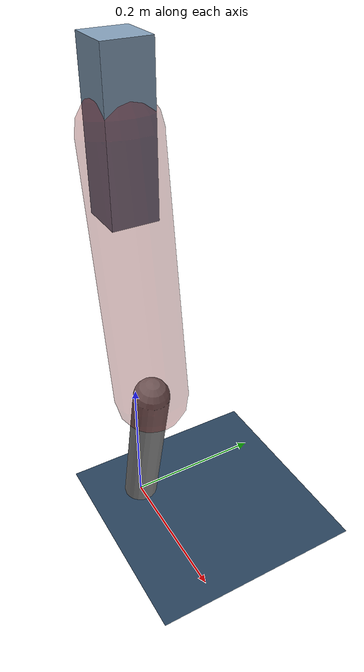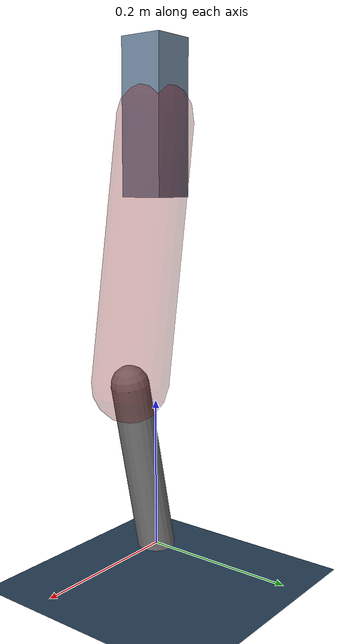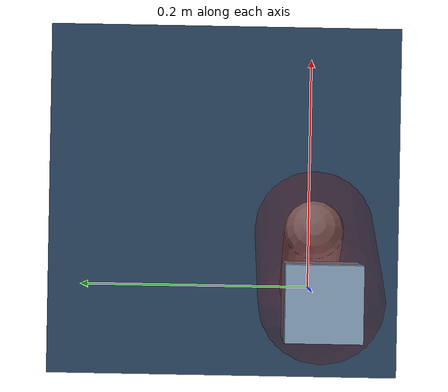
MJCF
<mujoco model="Hopper2D">
	<compiler inertiafromgeom="true" angle="radian" />
	<option timestep="0.001" integrator="implicit" cone="elliptic" solver="Newton" tolerance="1e-10" />

	<default>
		<geom contype="1" conaffinity="1" condim="3" friction="2 0.005 0.0001" solref="0.005 1" />
		<joint limited="true" damping="0.1" />
	</default>

	<asset>
		<texture name="skybox" type="skybox" builtin="gradient" rgb1=".4 .6 .8" rgb2="0 0 0" width="800" height="800" />
		<texture name="grid" type="2d" builtin="checker" rgb1=".1 .2 .3" rgb2=".2 .3 .4" width="300" height="300" mark="edge" markrgb=".2 .3 .4" />
		<material name="ground" texture="grid" texrepeat="1 1" texuniform="true" reflectance="0.1" />
		<material name="leg" rgba="0.5 0.6 0.7 1" />
	</asset>

	<worldbody>

		<geom name="floor" type="plane" size="5 5 0.25" material="ground" />

		<light directional="false" diffuse="0.8 0.8 0.8" specular="0.3 0.3 0.3" pos="0 0 2" dir="0 0 -1" />
		<light mode="targetbodycom" target="base" directional="false" diffuse="0.8 0.8 0.8" specular="0.3 0.3 0.3" pos="0 0 2" dir="0 0 -1" />

		<camera name="fixed" pos="0 -2 1" xyaxes="1 0 0 0 0 1" />
		<camera name="tracking" mode="trackcom" pos="0 -3 1" />

		<body name="root" pos="0 0 0.5706871667596207">
			<joint name="slide_x" type="slide" axis="1 0 0" range="-100 100" />
			<joint name="slide_z" type="slide" axis="0 0 1" range="0 10" />

			<body name="base" pos="0 0 0">
				<geom name="torso" type="box" size="0.03 0.03 0.1" mass="2.001" material="leg" />

				<body name="link1" pos="0 0 0" euler="0 1.4159025977503719 0">
					<joint type="hinge" axis="0 -1 0" pos="0 0 0" name="hinge1" limited="true" range="-3.14 3.14" stiffness="0" damping="0.1" />
					<geom name="thigh" type="capsule" fromto="0 0 0 0.3420132501206713 0 0" size="0.05" rgba="0.5 0 0 0.3" mass="1.1042371003378797" />

					<body name="link2" pos="0.3420132501206713 0 0" euler="0 0.37780729744041364 0">
						<joint type="hinge" axis="0 -1 0" pos="0 0 0" name="hinge2" limited="true" range="-3.14 3.14" stiffness="0" damping="0.1" />
						<geom name="shank" type="capsule" fromto="0 0 0 0.2386739166389495 0 0" size="0.025" mass="0.4331391333111596" />

					</body>
				</body>
			</body>
		</body>
	</worldbody>

	<actuator>
		<motor name="torque1" joint="hinge1" ctrlrange="-45.94832798540377 45.94832798540377" ctrllimited="true" gear="1" />
		<motor name="torque2" joint="hinge2" ctrlrange="-100.77329429243117 100.77329429243117" ctrllimited="true" gear="1" />
	</actuator>
</mujoco>
